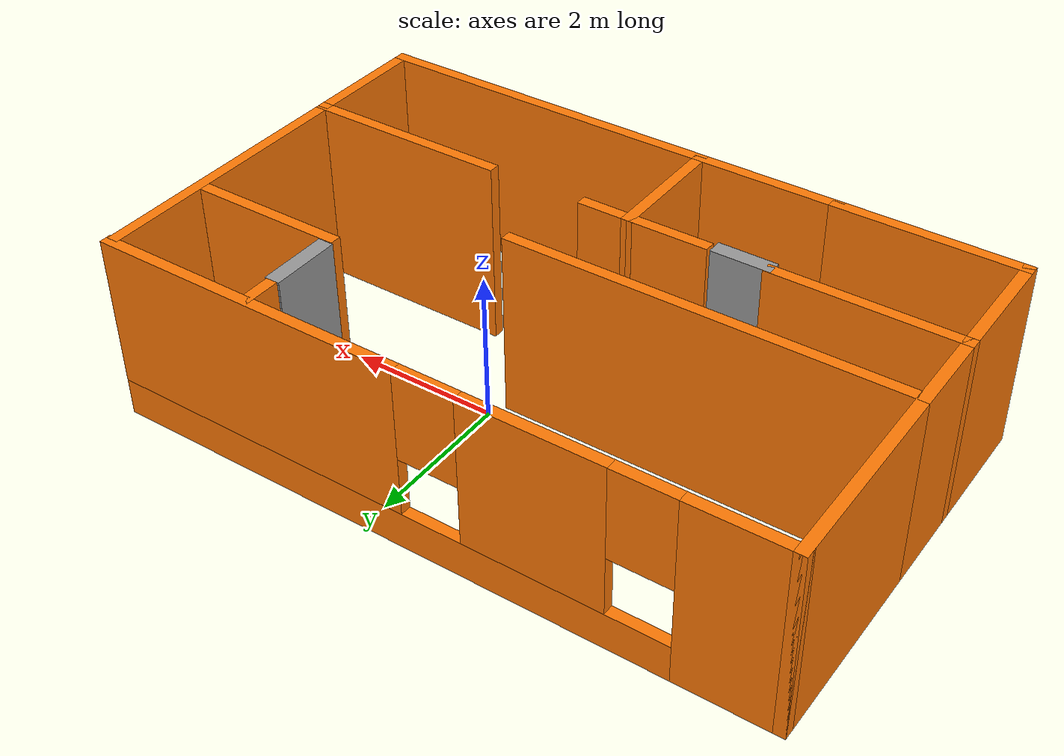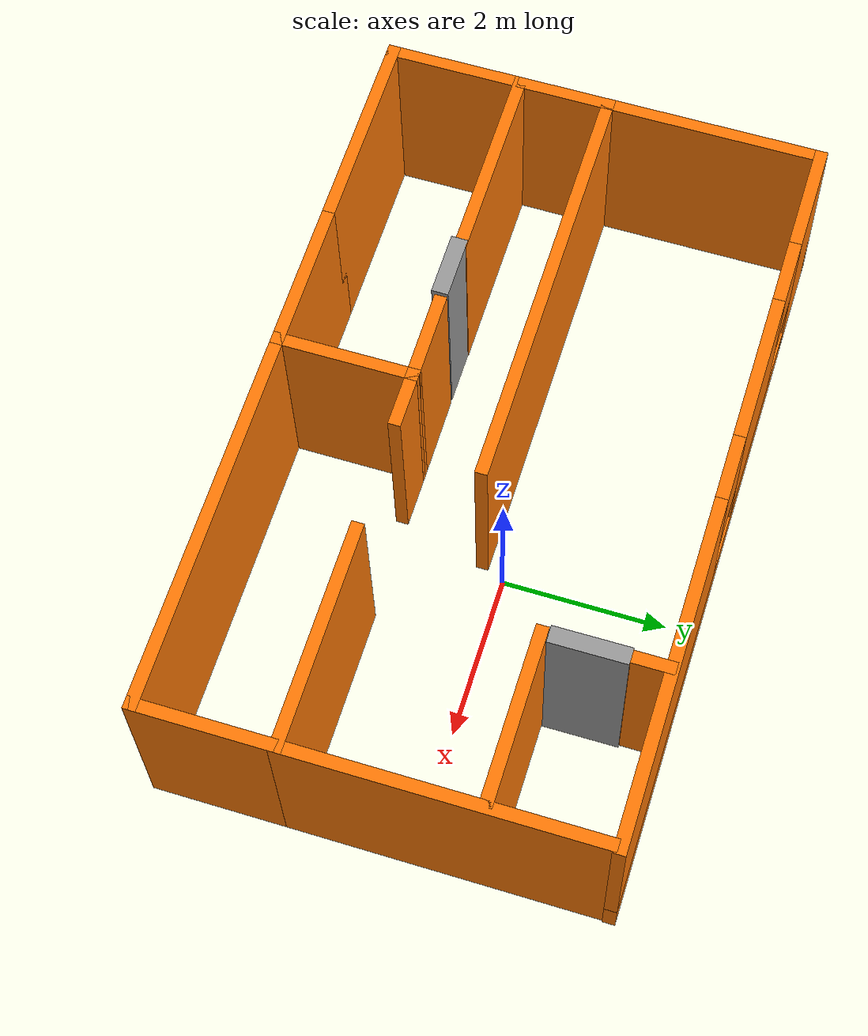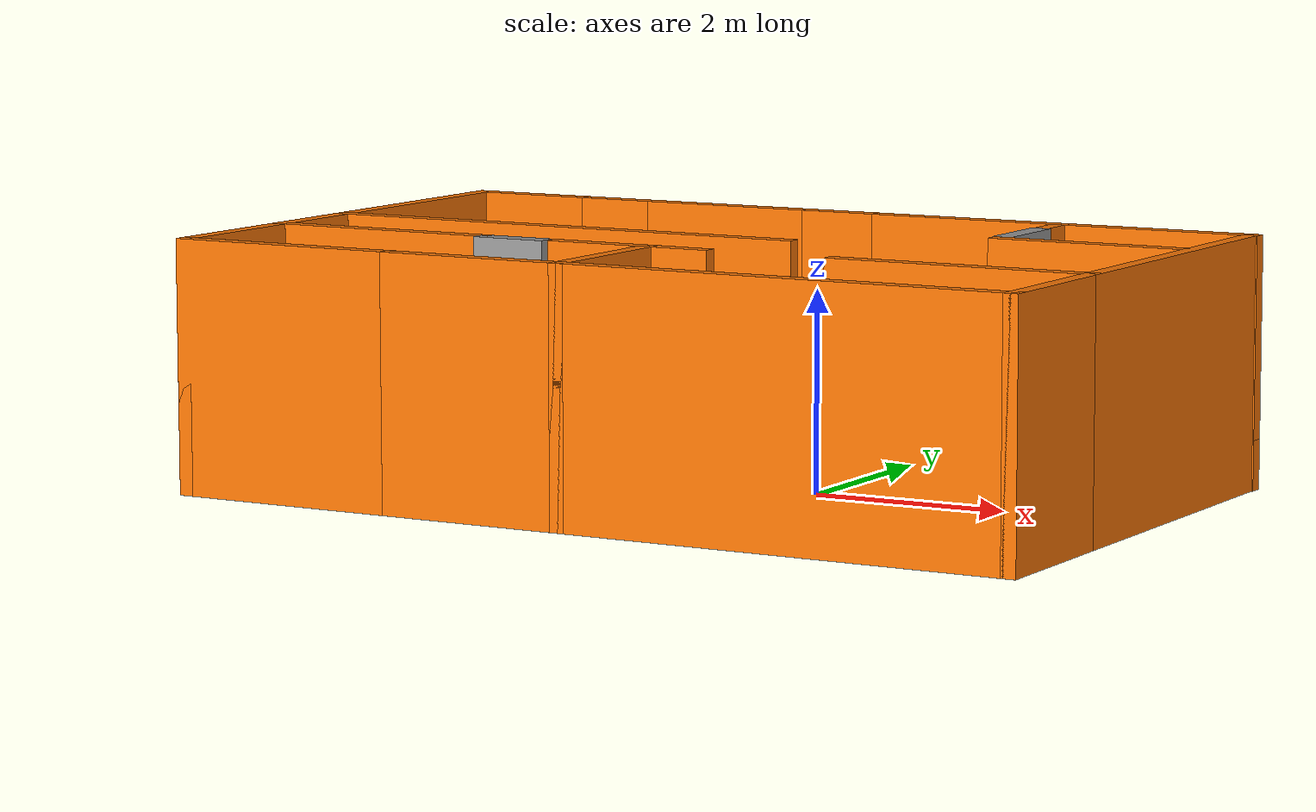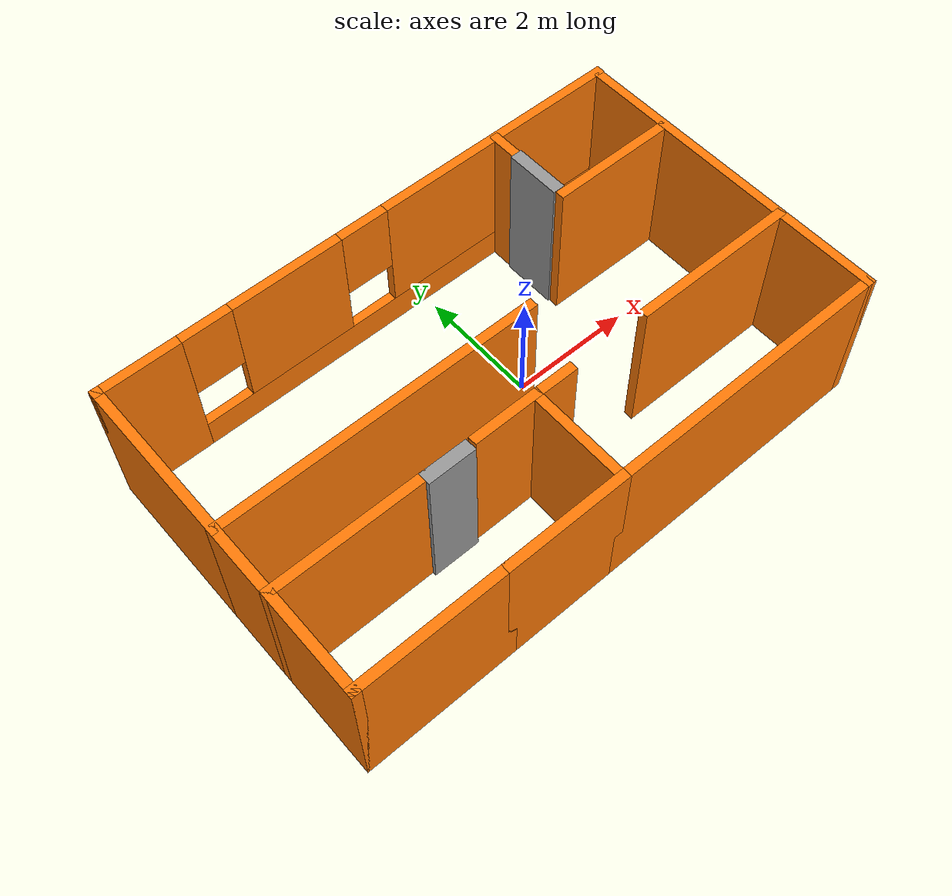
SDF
<?xml version='1.0'?>
<sdf version='1.6'>
  <model name='MyWorld'>
    <pose frame=''>-0.8725 -0.34 0 0 -0 0</pose>
    <link name='Door_1'>
      <collision name='Door_1_Collision'>
        <geometry>
          <box>
            <size>0.767 0.2 2.5</size>
          </box>
        </geometry>
        <pose frame=''>0 0 1.25 0 -0 0</pose>
      </collision>
      <visual name='Door_1_Visual'>
        <pose frame=''>0 0 1.25 0 -0 0</pose>
        <geometry>
          <box>
            <size>0.767 0.2 2.5</size>
          </box>
        </geometry>
        <material>
          <script>
            <uri>file://media/materials/scripts/gazebo.material</uri>
            <name>Gazebo/Grey</name>
          </script>
        </material>
      </visual>
      <pose frame=''>-1.69584 -1.0816 0 0 -0 0</pose>
    </link>
    <link name='Door_6'>
      <collision name='Door_6_Collision'>
        <geometry>
          <box>
            <size>0.911435 0.2 2.5</size>
          </box>
        </geometry>
        <pose frame=''>0 0 1.25 0 -0 0</pose>
      </collision>
      <visual name='Door_6_Visual'>
        <pose frame=''>0 0 1.25 0 -0 0</pose>
        <geometry>
          <box>
            <size>0.911435 0.2 2.5</size>
          </box>
        </geometry>
        <material>
          <script>
            <uri>file://media/materials/scripts/gazebo.material</uri>
            <name>Gazebo/Grey</name>
          </script>
        </material>
      </visual>
      <pose frame=''>2.36766 1.74731 0 0 0 -1.56603</pose>
    </link>
    <link name='Wall_0'>
      <collision name='Wall_0_Collision'>
        <geometry>
          <box>
            <size>2.5 0.15 2.5</size>
          </box>
        </geometry>
        <pose frame=''>0 0 1.25 0 -0 0</pose>
      </collision>
      <visual name='Wall_0_Visual'>
        <pose frame=''>0 0 1.25 0 -0 0</pose>
        <geometry>
          <box>
            <size>2.5 0.15 2.5</size>
          </box>
        </geometry>
        <material>
          <script>
            <uri>file://media/materials/scripts/gazebo.material</uri>
            <name>Gazebo/Grey</name>
          </script>
          <ambient>0.996078 0.47451 0.0196078 1</ambient>
        </material>
        <meta>
          <layer>0</layer>
        </meta>
      </visual>
      <pose frame=''>-3.2325 -1.05 0 0 -0 3.14159</pose>
    </link>
    <link name='Wall_1'>
      <collision name='Wall_1_Collision'>
        <geometry>
          <box>
            <size>1.75 0.15 2.5</size>
          </box>
        </geometry>
        <pose frame=''>0 0 1.25 0 -0 0</pose>
      </collision>
      <visual name='Wall_1_Visual'>
        <pose frame=''>0 0 1.25 0 -0 0</pose>
        <geometry>
          <box>
            <size>1.75 0.15 2.5</size>
          </box>
        </geometry>
        <material>
          <script>
            <uri>file://media/materials/scripts/gazebo.material</uri>
            <name>Gazebo/Grey</name>
          </script>
          <ambient>0.996078 0.47451 0.0196078 1</ambient>
        </material>
        <meta>
          <layer>0</layer>
        </meta>
      </visual>
      <pose frame=''>-4.4075 -1.85 0 0 0 -1.5708</pose>
    </link>
    <link name='Wall_11'>
      <collision name='Wall_11_Collision'>
        <geometry>
          <box>
            <size>1.25 0.15 2.5</size>
          </box>
        </geometry>
        <pose frame=''>0 0 1.25 0 -0 0</pose>
      </collision>
      <visual name='Wall_11_Visual'>
        <pose frame=''>0 0 1.25 0 -0 0</pose>
        <geometry>
          <box>
            <size>1.25 0.15 2.5</size>
          </box>
        </geometry>
        <material>
          <script>
            <uri>file://media/materials/scripts/gazebo.material</uri>
            <name>Gazebo/Grey</name>
          </script>
          <ambient>0.996078 0.47451 0.0196078 1</ambient>
        </material>
        <meta>
          <layer>0</layer>
        </meta>
      </visual>
      <pose frame=''>-4.4075 -0.5 0 0 -0 1.5708</pose>
    </link>
    <link name='Wall_12'>
      <collision name='Wall_12_Collision'>
        <geometry>
          <box>
            <size>5.25 0.15 2.5</size>
          </box>
        </geometry>
        <pose frame=''>0 0 1.25 0 -0 0</pose>
      </collision>
      <visual name='Wall_12_Visual'>
        <pose frame=''>0 0 1.25 0 -0 0</pose>
        <geometry>
          <box>
            <size>5.25 0.15 2.5</size>
          </box>
        </geometry>
        <material>
          <script>
            <uri>file://media/materials/scripts/gazebo.material</uri>
            <name>Gazebo/Grey</name>
          </script>
          <ambient>0.996078 0.47451 0.0196078 1</ambient>
        </material>
        <meta>
          <layer>0</layer>
        </meta>
      </visual>
      <pose frame=''>-1.8575 0.05 0 0 -0 0</pose>
    </link>
    <link name='Wall_15'>
      <collision name='Wall_15_Collision'>
        <geometry>
          <box>
            <size>2.75 0.15 2.5</size>
          </box>
        </geometry>
        <pose frame=''>0 0 1.25 0 -0 0</pose>
      </collision>
      <visual name='Wall_15_Visual'>
        <pose frame=''>0 0 1.25 0 -0 0</pose>
        <geometry>
          <box>
            <size>2.75 0.15 2.5</size>
          </box>
        </geometry>
        <material>
          <script>
            <uri>file://media/materials/scripts/gazebo.material</uri>
            <name>Gazebo/Grey</name>
          </script>
          <ambient>0.996078 0.47451 0.0196078 1</ambient>
        </material>
        <meta>
          <layer>0</layer>
        </meta>
      </visual>
      <pose frame=''>-4.4075 1.35 0 0 -0 1.5708</pose>
    </link>
    <link name='Wall_16'>
      <pose frame=''>0 2.65 0 0 -0 0</pose>
      <visual name='Wall_16_Visual_0'>
        <pose frame=''>-3.81322 0 1.25 0 -0 0</pose>
        <geometry>
          <box>
            <size>1.33857 0.15 2.5</size>
          </box>
        </geometry>
        <material>
          <script>
            <uri>file://media/materials/scripts/gazebo.material</uri>
            <name>Gazebo/Grey</name>
          </script>
          <ambient>0.996078 0.47451 0.0196078 1</ambient>
        </material>
        <meta>
          <layer>0</layer>
        </meta>
      </visual>
      <collision name='Wall_16_Collision_0'>
        <geometry>
          <box>
            <size>1.33857 0.15 2.5</size>
          </box>
        </geometry>
        <pose frame=''>-3.81322 0 1.25 0 -0 0</pose>
      </collision>
      <visual name='Wall_16_Visual_1'>
        <pose frame=''>0.669285 0 0.25 0 -0 0</pose>
        <geometry>
          <box>
            <size>7.62643 0.15 0.5</size>
          </box>
        </geometry>
        <material>
          <script>
            <uri>file://media/materials/scripts/gazebo.material</uri>
            <name>Gazebo/Grey</name>
          </script>
          <ambient>0.996078 0.47451 0.0196078 1</ambient>
        </material>
        <meta>
          <layer>0</layer>
        </meta>
      </visual>
      <collision name='Wall_16_Collision_1'>
        <geometry>
          <box>
            <size>7.62643 0.15 0.5</size>
          </box>
        </geometry>
        <pose frame=''>0.669285 0 0.25 0 -0 0</pose>
      </collision>
      <visual name='Wall_16_Visual_2'>
        <pose frame=''>-1.42722 0 1.5 0 -0 0</pose>
        <geometry>
          <box>
            <size>1.83342 0.15 2</size>
          </box>
        </geometry>
        <material>
          <script>
            <uri>file://media/materials/scripts/gazebo.material</uri>
            <name>Gazebo/Grey</name>
          </script>
          <ambient>0.996078 0.47451 0.0196078 1</ambient>
        </material>
        <meta>
          <layer>0</layer>
        </meta>
      </visual>
      <collision name='Wall_16_Collision_2'>
        <geometry>
          <box>
            <size>1.83342 0.15 2</size>
          </box>
        </geometry>
        <pose frame=''>-1.42722 0 1.5 0 -0 0</pose>
      </collision>
      <visual name='Wall_16_Visual_3'>
        <pose frame=''>2.38599 0 1.5 0 -0 0</pose>
        <geometry>
          <box>
            <size>4.19301 0.15 2</size>
          </box>
        </geometry>
        <material>
          <script>
            <uri>file://media/materials/scripts/gazebo.material</uri>
            <name>Gazebo/Grey</name>
          </script>
          <ambient>0.996078 0.47451 0.0196078 1</ambient>
        </material>
        <meta>
          <layer>0</layer>
        </meta>
      </visual>
      <collision name='Wall_16_Collision_3'>
        <geometry>
          <box>
            <size>4.19301 0.15 2</size>
          </box>
        </geometry>
        <pose frame=''>2.38599 0 1.5 0 -0 0</pose>
      </collision>
      <visual name='Wall_16_Visual_4'>
        <pose frame=''>-2.74393 0 1.9 0 -0 0</pose>
        <geometry>
          <box>
            <size>0.8 0.15 1.2</size>
          </box>
        </geometry>
        <material>
          <script>
            <uri>file://media/materials/scripts/gazebo.material</uri>
            <name>Gazebo/Grey</name>
          </script>
          <ambient>0.996078 0.47451 0.0196078 1</ambient>
        </material>
        <meta>
          <layer>0</layer>
        </meta>
      </visual>
      <collision name='Wall_16_Collision_4'>
        <geometry>
          <box>
            <size>0.8 0.15 1.2</size>
          </box>
        </geometry>
        <pose frame=''>-2.74393 0 1.9 0 -0 0</pose>
      </collision>
      <visual name='Wall_16_Visual_5'>
        <pose frame=''>-0.110511 0 1.9 0 -0 0</pose>
        <geometry>
          <box>
            <size>0.8 0.15 1.2</size>
          </box>
        </geometry>
        <material>
          <script>
            <uri>file://media/materials/scripts/gazebo.material</uri>
            <name>Gazebo/Grey</name>
          </script>
          <ambient>0.996078 0.47451 0.0196078 1</ambient>
        </material>
        <meta>
          <layer>0</layer>
        </meta>
      </visual>
      <collision name='Wall_16_Collision_5'>
        <geometry>
          <box>
            <size>0.8 0.15 1.2</size>
          </box>
        </geometry>
        <pose frame=''>-0.110511 0 1.9 0 -0 0</pose>
      </collision>
    </link>
    <link name='Wall_18'>
      <collision name='Wall_18_Collision'>
        <geometry>
          <box>
            <size>3.75 0.15 2.5</size>
          </box>
        </geometry>
        <pose frame=''>0 0 1.25 0 -0 0</pose>
      </collision>
      <visual name='Wall_18_Visual'>
        <pose frame=''>0 0 1.25 0 -0 0</pose>
        <geometry>
          <box>
            <size>3.75 0.15 2.5</size>
          </box>
        </geometry>
        <material>
          <script>
            <uri>file://media/materials/scripts/gazebo.material</uri>
            <name>Gazebo/Grey</name>
          </script>
          <ambient>0.996078 0.47451 0.0196078 1</ambient>
        </material>
        <meta>
          <layer>0</layer>
        </meta>
      </visual>
      <pose frame=''>4.3925 0.75 0 0 -0 1.5708</pose>
    </link>
    <link name='Wall_2'>
      <collision name='Wall_2_Collision'>
        <geometry>
          <box>
            <size>2.5 0.15 2.5</size>
          </box>
        </geometry>
        <pose frame=''>0 0 1.25 0 -0 0</pose>
      </collision>
      <visual name='Wall_2_Visual'>
        <pose frame=''>0 0 1.25 0 -0 0</pose>
        <geometry>
          <box>
            <size>2.5 0.15 2.5</size>
          </box>
        </geometry>
        <material>
          <script>
            <uri>file://media/materials/scripts/gazebo.material</uri>
            <name>Gazebo/Grey</name>
          </script>
          <ambient>0.996078 0.47451 0.0196078 1</ambient>
        </material>
        <meta>
          <layer>0</layer>
        </meta>
      </visual>
      <pose frame=''>-3.2325 -2.65 0 0 -0 0</pose>
    </link>
    <link name='Wall_20'>
      <collision name='Wall_20_Collision'>
        <geometry>
          <box>
            <size>2.099 0.15 2.5</size>
          </box>
        </geometry>
        <pose frame=''>0 0 1.25 0 -0 0</pose>
      </collision>
      <visual name='Wall_20_Visual'>
        <pose frame=''>0 0 1.25 0 -0 0</pose>
        <geometry>
          <box>
            <size>2.099 0.15 2.5</size>
          </box>
        </geometry>
        <material>
          <script>
            <uri>file://media/materials/scripts/gazebo.material</uri>
            <name>Gazebo/Grey</name>
          </script>
          <ambient>0.996078 0.47451 0.0196078 1</ambient>
        </material>
        <meta>
          <layer>0</layer>
        </meta>
      </visual>
      <pose frame=''>3.34559 1.20872 0 0 -0 0</pose>
    </link>
    <link name='Wall_23'>
      <collision name='Wall_23_Collision'>
        <geometry>
          <box>
            <size>0.5 0.15 2.5</size>
          </box>
        </geometry>
        <pose frame=''>0 0 1.25 0 -0 0</pose>
      </collision>
      <visual name='Wall_23_Visual'>
        <pose frame=''>0 0 1.25 0 -0 0</pose>
        <geometry>
          <box>
            <size>0.5 0.15 2.5</size>
          </box>
        </geometry>
        <material>
          <script>
            <uri>file://media/materials/scripts/gazebo.material</uri>
            <name>Gazebo/Grey</name>
          </script>
          <ambient>0.996078 0.47451 0.0196078 1</ambient>
        </material>
        <meta>
          <layer>0</layer>
        </meta>
      </visual>
      <pose frame=''>2.36331 2.44482 0 0 -0 1.5708</pose>
    </link>
    <link name='Wall_25'>
      <collision name='Wall_25_Collision'>
        <geometry>
          <box>
            <size>1.14363 0.15 2.5</size>
          </box>
        </geometry>
        <pose frame=''>0 0 1.25 0 -0 0</pose>
      </collision>
      <visual name='Wall_25_Visual'>
        <pose frame=''>0 0 1.25 0 -0 0</pose>
        <geometry>
          <box>
            <size>1.14363 0.15 2.5</size>
          </box>
        </geometry>
        <material>
          <script>
            <uri>file://media/materials/scripts/gazebo.material</uri>
            <name>Gazebo/Grey</name>
          </script>
          <ambient>0.996078 0.47451 0.0196078 1</ambient>
        </material>
        <meta>
          <layer>0</layer>
        </meta>
      </visual>
      <pose frame=''>-0.704309 -1.0526 0 0 -0 0.005237</pose>
    </link>
    <link name='Wall_3'>
      <collision name='Wall_3_Collision'>
        <geometry>
          <box>
            <size>2 0.15 2.5</size>
          </box>
        </geometry>
        <pose frame=''>0 0 1.25 0 -0 0</pose>
      </collision>
      <visual name='Wall_3_Visual'>
        <pose frame=''>0 0 1.25 0 -0 0</pose>
        <geometry>
          <box>
            <size>2 0.15 2.5</size>
          </box>
        </geometry>
        <material>
          <script>
            <uri>file://media/materials/scripts/gazebo.material</uri>
            <name>Gazebo/Grey</name>
          </script>
          <ambient>0.996078 0.47451 0.0196078 1</ambient>
        </material>
        <meta>
          <layer>0</layer>
        </meta>
      </visual>
      <pose frame=''>-1.1325 -2.65 0 0 -0 0</pose>
    </link>
    <link name='Wall_4'>
      <collision name='Wall_4_Collision'>
        <geometry>
          <box>
            <size>1.75 0.15 2.5</size>
          </box>
        </geometry>
        <pose frame=''>0 0 1.25 0 -0 0</pose>
      </collision>
      <visual name='Wall_4_Visual'>
        <pose frame=''>0 0 1.25 0 -0 0</pose>
        <geometry>
          <box>
            <size>1.75 0.15 2.5</size>
          </box>
        </geometry>
        <material>
          <script>
            <uri>file://media/materials/scripts/gazebo.material</uri>
            <name>Gazebo/Grey</name>
          </script>
          <ambient>0.996078 0.47451 0.0196078 1</ambient>
        </material>
        <meta>
          <layer>0</layer>
        </meta>
      </visual>
      <pose frame=''>-0.2075 -1.85 0 0 -0 1.5708</pose>
    </link>
    <link name='Wall_5'>
      <collision name='Wall_5_Collision'>
        <geometry>
          <box>
            <size>0.75 0.15 2.5</size>
          </box>
        </geometry>
        <pose frame=''>0 0 1.25 0 -0 0</pose>
      </collision>
      <visual name='Wall_5_Visual'>
        <pose frame=''>0 0 1.25 0 -0 0</pose>
        <geometry>
          <box>
            <size>0.75 0.15 2.5</size>
          </box>
        </geometry>
        <material>
          <script>
            <uri>file://media/materials/scripts/gazebo.material</uri>
            <name>Gazebo/Grey</name>
          </script>
          <ambient>0.996078 0.47451 0.0196078 1</ambient>
        </material>
        <meta>
          <layer>0</layer>
        </meta>
      </visual>
      <pose frame=''>0.0925 -1.05 0 0 -0 0</pose>
    </link>
    <link name='Wall_7'>
      <collision name='Wall_7_Collision'>
        <geometry>
          <box>
            <size>4.75 0.15 2.5</size>
          </box>
        </geometry>
        <pose frame=''>0 0 1.25 0 -0 0</pose>
      </collision>
      <visual name='Wall_7_Visual'>
        <pose frame=''>0 0 1.25 0 -0 0</pose>
        <geometry>
          <box>
            <size>4.75 0.15 2.5</size>
          </box>
        </geometry>
        <material>
          <script>
            <uri>file://media/materials/scripts/gazebo.material</uri>
            <name>Gazebo/Grey</name>
          </script>
          <ambient>0.996078 0.47451 0.0196078 1</ambient>
        </material>
        <meta>
          <layer>0</layer>
        </meta>
      </visual>
      <pose frame=''>2.0925 -2.65 0 0 -0 0</pose>
    </link>
    <link name='Wall_8'>
      <collision name='Wall_8_Collision'>
        <geometry>
          <box>
            <size>1.75 0.15 2.5</size>
          </box>
        </geometry>
        <pose frame=''>0 0 1.25 0 -0 0</pose>
      </collision>
      <visual name='Wall_8_Visual'>
        <pose frame=''>0 0 1.25 0 -0 0</pose>
        <geometry>
          <box>
            <size>1.75 0.15 2.5</size>
          </box>
        </geometry>
        <material>
          <script>
            <uri>file://media/materials/scripts/gazebo.material</uri>
            <name>Gazebo/Grey</name>
          </script>
          <ambient>0.996078 0.47451 0.0196078 1</ambient>
        </material>
        <meta>
          <layer>0</layer>
        </meta>
      </visual>
      <pose frame=''>4.3925 -1.85 0 0 -0 1.5708</pose>
    </link>
    <link name='Wall_9'>
      <collision name='Wall_9_Collision'>
        <geometry>
          <box>
            <size>2.75 0.15 2.5</size>
          </box>
        </geometry>
        <pose frame=''>0 0 1.25 0 -0 0</pose>
      </collision>
      <visual name='Wall_9_Visual'>
        <pose frame=''>0 0 1.25 0 -0 0</pose>
        <geometry>
          <box>
            <size>2.75 0.15 2.5</size>
          </box>
        </geometry>
        <material>
          <script>
            <uri>file://media/materials/scripts/gazebo.material</uri>
            <name>Gazebo/Grey</name>
          </script>
          <ambient>0.996078 0.47451 0.0196078 1</ambient>
        </material>
        <meta>
          <layer>0</layer>
        </meta>
      </visual>
      <pose frame=''>3.0925 -1.05 0 0 -0 3.14159</pose>
    </link>
    <static>1</static>
  </model>
</sdf>
